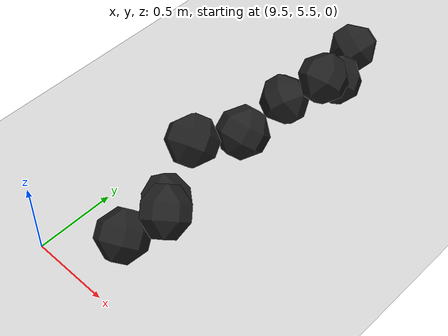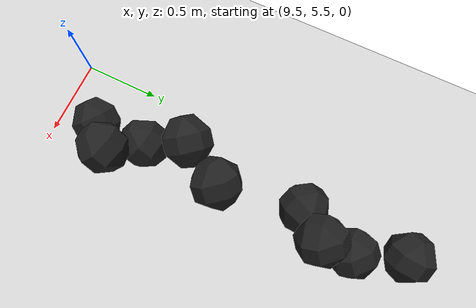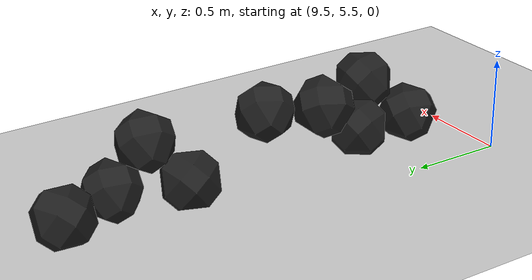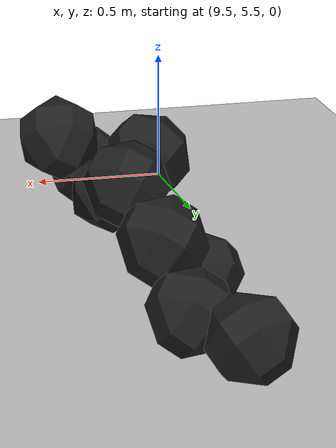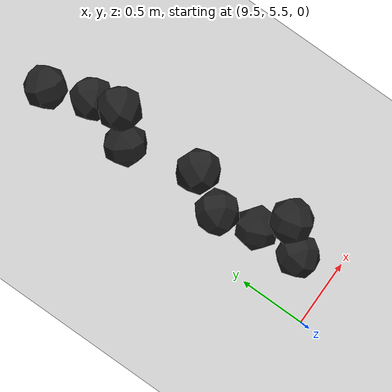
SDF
<sdf version="1.7">
 <world name="default">
  <model name="ground_plane">
   <static>1</static>
   <link name="link">
    <collision name="collision">
     <geometry><plane><normal>0 0 1</normal><size>100 100</size></plane></geometry>
     <surface><friction><ode><mu>100</mu><mu2>50</mu2></ode></friction></surface>
    </collision>
    <visual name="visual">
     <cast_shadows>0</cast_shadows>
     <geometry><plane><normal>0 0 1</normal><size>100 100</size></plane></geometry>
     <material>
      <script><uri>file://media/materials/scripts/gazebo.material</uri><name>Gazebo/Grey</name></script>
     </material>
    </visual>
   </link>
  </model>
  <model name="haoduomiantiaa_39">
   <link name="link_0">
    <inertial>
     <mass>0.2</mass>
     <inertia>
      <ixx>0.166667</ixx>
      <ixy>0</ixy>
      <ixz>0</ixz>
      <iyy>0.166667</iyy>
      <iyz>0</iyz>
      <izz>0.166667</izz>
     </inertia>
    </inertial>
    <visual name="visual">
     <geometry>
      <mesh>
       <uri>/home/lihaoyang/catkin_ws/src/pudong_gazebo/world/stl/haoduomianti.stl</uri>
       <scale>1 1 1</scale>
      </mesh>
     </geometry>
     <material>
      <lighting>1</lighting>
      <script><uri>file://media/materials/scripts/gazebo.material</uri><name>Gazebo/Black</name></script>
      <shader type="pixel"><normal_map>__default__</normal_map></shader>
      <ambient>0.3 0.3 0.3 1</ambient>
      <diffuse>0.7 0.7 0.7 1</diffuse>
      <specular>0.01 0.01 0.01 1</specular>
      <emissive>0 0 0 1</emissive>
     </material>
    </visual>
    <collision name="collision">
     <geometry>
      <mesh>
       <uri>/home/lihaoyang/catkin_ws/src/pudong_gazebo/world/stl/haoduomianti.stl</uri>
       <scale>1 1 1</scale>
      </mesh>
     </geometry>
     <surface>
      <friction>
       <ode><mu>1</mu><mu2>1</mu2><fdir1>0 0 0</fdir1><slip1>0</slip1><slip2>0</slip2></ode>
       <torsional>
        <coefficient>1</coefficient>
        <patch_radius>0</patch_radius>
        <surface_radius>0</surface_radius>
        <use_patch_radius>1</use_patch_radius>
        <ode><slip>0</slip></ode>
       </torsional>
      </friction>
      <bounce><restitution_coefficient>0</restitution_coefficient><threshold>1e+06</threshold></bounce>
      <contact>
       <collide_without_contact>0</collide_without_contact>
       <collide_without_contact_bitmask>1</collide_without_contact_bitmask>
       <collide_bitmask>1</collide_bitmask>
       <ode>
        <soft_cfm>0</soft_cfm>
        <soft_erp>0.2</soft_erp>
        <kp>1e+13</kp>
        <kd>1</kd>
        <max_vel>0.01</max_vel>
        <min_depth>0</min_depth>
       </ode>
       <bullet>
        <split_impulse>1</split_impulse>
        <split_impulse_penetration_threshold>-0.01</split_impulse_penetration_threshold>
        <soft_cfm>0</soft_cfm>
        <soft_erp>0.2</soft_erp>
        <kp>1e+13</kp>
        <kd>1</kd>
       </bullet>
      </contact>
     </surface>
    </collision>
   </link>
   <static>0</static>
   <pose>9.85935 6.14732 -0.1155 0.785504 -0.615534 0.392676</pose>
  </model>
  <model name="haoduomiantiaa_41">
   <link name="link_0">
    <inertial>
     <mass>0.2</mass>
     <inertia>
      <ixx>0.166667</ixx>
      <ixy>0</ixy>
      <ixz>0</ixz>
      <iyy>0.166667</iyy>
      <iyz>0</iyz>
      <izz>0.166667</izz>
     </inertia>
    </inertial>
    <visual name="visual">
     <geometry>
      <mesh>
       <uri>/home/lihaoyang/catkin_ws/src/pudong_gazebo/world/stl/haoduomianti.stl</uri>
       <scale>1 1 1</scale>
      </mesh>
     </geometry>
     <material>
      <lighting>1</lighting>
      <script><uri>file://media/materials/scripts/gazebo.material</uri><name>Gazebo/Black</name></script>
      <shader type="pixel"><normal_map>__default__</normal_map></shader>
      <ambient>0.3 0.3 0.3 1</ambient>
      <diffuse>0.7 0.7 0.7 1</diffuse>
      <specular>0.01 0.01 0.01 1</specular>
      <emissive>0 0 0 1</emissive>
     </material>
    </visual>
    <collision name="collision">
     <geometry>
      <mesh>
       <uri>/home/lihaoyang/catkin_ws/src/pudong_gazebo/world/stl/haoduomianti.stl</uri>
       <scale>1 1 1</scale>
      </mesh>
     </geometry>
     <surface>
      <friction>
       <ode><mu>1</mu><mu2>1</mu2><fdir1>0 0 0</fdir1><slip1>0</slip1><slip2>0</slip2></ode>
       <torsional>
        <coefficient>1</coefficient>
        <patch_radius>0</patch_radius>
        <surface_radius>0</surface_radius>
        <use_patch_radius>1</use_patch_radius>
        <ode><slip>0</slip></ode>
       </torsional>
      </friction>
      <bounce><restitution_coefficient>0</restitution_coefficient><threshold>1e+06</threshold></bounce>
      <contact>
       <collide_without_contact>0</collide_without_contact>
       <collide_without_contact_bitmask>1</collide_without_contact_bitmask>
       <collide_bitmask>1</collide_bitmask>
       <ode>
        <soft_cfm>0</soft_cfm>
        <soft_erp>0.2</soft_erp>
        <kp>1e+13</kp>
        <kd>1</kd>
        <max_vel>0.01</max_vel>
        <min_depth>0</min_depth>
       </ode>
       <bullet>
        <split_impulse>1</split_impulse>
        <split_impulse_penetration_threshold>-0.01</split_impulse_penetration_threshold>
        <soft_cfm>0</soft_cfm>
        <soft_erp>0.2</soft_erp>
        <kp>1e+13</kp>
        <kd>1</kd>
       </bullet>
      </contact>
     </surface>
    </collision>
   </link>
   <static>0</static>
   <pose>9.93235 7.60521 -0.115467 0.785385 -0.612735 1.90548</pose>
  </model>
  <model name="haoduomiantiaa_45">
   <link name="link_0">
    <inertial>
     <mass>0.2</mass>
     <inertia>
      <ixx>0.166667</ixx>
      <ixy>0</ixy>
      <ixz>0</ixz>
      <iyy>0.166667</iyy>
      <iyz>0</iyz>
      <izz>0.166667</izz>
     </inertia>
    </inertial>
    <visual name="visual">
     <geometry>
      <mesh>
       <uri>/home/lihaoyang/catkin_ws/src/pudong_gazebo/world/stl/haoduomianti.stl</uri>
       <scale>1 1 1</scale>
      </mesh>
     </geometry>
     <material>
      <lighting>1</lighting>
      <script><uri>file://media/materials/scripts/gazebo.material</uri><name>Gazebo/Black</name></script>
      <shader type="pixel"><normal_map>__default__</normal_map></shader>
      <ambient>0.3 0.3 0.3 1</ambient>
      <diffuse>0.7 0.7 0.7 1</diffuse>
      <specular>0.01 0.01 0.01 1</specular>
      <emissive>0 0 0 1</emissive>
     </material>
    </visual>
    <collision name="collision">
     <geometry>
      <mesh>
       <uri>/home/lihaoyang/catkin_ws/src/pudong_gazebo/world/stl/haoduomianti.stl</uri>
       <scale>1 1 1</scale>
      </mesh>
     </geometry>
     <surface>
      <friction>
       <ode><mu>1</mu><mu2>1</mu2><fdir1>0 0 0</fdir1><slip1>0</slip1><slip2>0</slip2></ode>
       <torsional>
        <coefficient>1</coefficient>
        <patch_radius>0</patch_radius>
        <surface_radius>0</surface_radius>
        <use_patch_radius>1</use_patch_radius>
        <ode><slip>0</slip></ode>
       </torsional>
      </friction>
      <bounce><restitution_coefficient>0</restitution_coefficient><threshold>1e+06</threshold></bounce>
      <contact>
       <collide_without_contact>0</collide_without_contact>
       <collide_without_contact_bitmask>1</collide_without_contact_bitmask>
       <collide_bitmask>1</collide_bitmask>
       <ode>
        <soft_cfm>0</soft_cfm>
        <soft_erp>0.2</soft_erp>
        <kp>1e+13</kp>
        <kd>1</kd>
        <max_vel>0.01</max_vel>
        <min_depth>0</min_depth>
       </ode>
       <bullet>
        <split_impulse>1</split_impulse>
        <split_impulse_penetration_threshold>-0.01</split_impulse_penetration_threshold>
        <soft_cfm>0</soft_cfm>
        <soft_erp>0.2</soft_erp>
        <kp>1e+13</kp>
        <kd>1</kd>
       </bullet>
      </contact>
     </surface>
    </collision>
   </link>
   <static>0</static>
   <pose>9.88069 5.82253 -0.111563 0.691479 -0.656367 2.02827</pose>
  </model>
  <model name="haoduomiantiaa_53">
   <link name="link_0">
    <inertial>
     <mass>0.2</mass>
     <inertia>
      <ixx>0.166667</ixx>
      <ixy>0</ixy>
      <ixz>0</ixz>
      <iyy>0.166667</iyy>
      <iyz>0</iyz>
      <izz>0.166667</izz>
     </inertia>
    </inertial>
    <visual name="visual">
     <geometry>
      <mesh>
       <uri>/home/lihaoyang/catkin_ws/src/pudong_gazebo/world/stl/haoduomianti.stl</uri>
       <scale>1 1 1</scale>
      </mesh>
     </geometry>
     <material>
      <lighting>1</lighting>
      <script><uri>file://media/materials/scripts/gazebo.material</uri><name>Gazebo/Black</name></script>
      <shader type="pixel"><normal_map>__default__</normal_map></shader>
      <ambient>0.3 0.3 0.3 1</ambient>
      <diffuse>0.7 0.7 0.7 1</diffuse>
      <specular>0.01 0.01 0.01 1</specular>
      <emissive>0 0 0 1</emissive>
     </material>
    </visual>
    <collision name="collision">
     <geometry>
      <mesh>
       <uri>/home/lihaoyang/catkin_ws/src/pudong_gazebo/world/stl/haoduomianti.stl</uri>
       <scale>1 1 1</scale>
      </mesh>
     </geometry>
     <surface>
      <friction>
       <ode><mu>1</mu><mu2>1</mu2><fdir1>0 0 0</fdir1><slip1>0</slip1><slip2>0</slip2></ode>
       <torsional>
        <coefficient>1</coefficient>
        <patch_radius>0</patch_radius>
        <surface_radius>0</surface_radius>
        <use_patch_radius>1</use_patch_radius>
        <ode><slip>0</slip></ode>
       </torsional>
      </friction>
      <bounce><restitution_coefficient>0</restitution_coefficient><threshold>1e+06</threshold></bounce>
      <contact>
       <collide_without_contact>0</collide_without_contact>
       <collide_without_contact_bitmask>1</collide_without_contact_bitmask>
       <collide_bitmask>1</collide_bitmask>
       <ode>
        <soft_cfm>0</soft_cfm>
        <soft_erp>0.2</soft_erp>
        <kp>1e+13</kp>
        <kd>1</kd>
        <max_vel>0.01</max_vel>
        <min_depth>0</min_depth>
       </ode>
       <bullet>
        <split_impulse>1</split_impulse>
        <split_impulse_penetration_threshold>-0.01</split_impulse_penetration_threshold>
        <soft_cfm>0</soft_cfm>
        <soft_erp>0.2</soft_erp>
        <kp>1e+13</kp>
        <kd>1</kd>
       </bullet>
      </contact>
     </surface>
    </collision>
   </link>
   <static>0</static>
   <pose>9.83567 7.22072 -0.110091 0.652059 -0.671616 0.778227</pose>
  </model>
  <model name="haoduomiantiaa_57">
   <link name="link_0">
    <inertial>
     <mass>0.2</mass>
     <inertia>
      <ixx>0.166667</ixx>
      <ixy>0</ixy>
      <ixz>0</ixz>
      <iyy>0.166667</iyy>
      <iyz>0</iyz>
      <izz>0.166667</izz>
     </inertia>
    </inertial>
    <visual name="visual">
     <geometry>
      <mesh>
       <uri>/home/lihaoyang/catkin_ws/src/pudong_gazebo/world/stl/haoduomianti.stl</uri>
       <scale>1 1 1</scale>
      </mesh>
     </geometry>
     <material>
      <lighting>1</lighting>
      <script><uri>file://media/materials/scripts/gazebo.material</uri><name>Gazebo/Black</name></script>
      <shader type="pixel"><normal_map>__default__</normal_map></shader>
      <ambient>0.3 0.3 0.3 1</ambient>
      <diffuse>0.7 0.7 0.7 1</diffuse>
      <specular>0.01 0.01 0.01 1</specular>
      <emissive>0 0 0 1</emissive>
     </material>
    </visual>
    <collision name="collision">
     <geometry>
      <mesh>
       <uri>/home/lihaoyang/catkin_ws/src/pudong_gazebo/world/stl/haoduomianti.stl</uri>
       <scale>1 1 1</scale>
      </mesh>
     </geometry>
     <surface>
      <friction>
       <ode><mu>1</mu><mu2>1</mu2><fdir1>0 0 0</fdir1><slip1>0</slip1><slip2>0</slip2></ode>
       <torsional>
        <coefficient>1</coefficient>
        <patch_radius>0</patch_radius>
        <surface_radius>0</surface_radius>
        <use_patch_radius>1</use_patch_radius>
        <ode><slip>0</slip></ode>
       </torsional>
      </friction>
      <bounce><restitution_coefficient>0</restitution_coefficient><threshold>1e+06</threshold></bounce>
      <contact>
       <collide_without_contact>0</collide_without_contact>
       <collide_without_contact_bitmask>1</collide_without_contact_bitmask>
       <collide_bitmask>1</collide_bitmask>
       <ode>
        <soft_cfm>0</soft_cfm>
        <soft_erp>0.2</soft_erp>
        <kp>1e+13</kp>
        <kd>1</kd>
        <max_vel>0.01</max_vel>
        <min_depth>0</min_depth>
       </ode>
       <bullet>
        <split_impulse>1</split_impulse>
        <split_impulse_penetration_threshold>-0.01</split_impulse_penetration_threshold>
        <soft_cfm>0</soft_cfm>
        <soft_erp>0.2</soft_erp>
        <kp>1e+13</kp>
        <kd>1</kd>
       </bullet>
      </contact>
     </surface>
    </collision>
   </link>
   <static>0</static>
   <pose>9.83217 6.44617 0.110252 0.90222 -0.457372 -2.46668</pose>
  </model>
  <model name="haoduomiantiaa_65">
   <link name="link_0">
    <inertial>
     <mass>0.2</mass>
     <inertia>
      <ixx>0.166667</ixx>
      <ixy>0</ixy>
      <ixz>0</ixz>
      <iyy>0.166667</iyy>
      <iyz>0</iyz>
      <izz>0.166667</izz>
     </inertia>
    </inertial>
    <visual name="visual">
     <geometry>
      <mesh>
       <uri>/home/lihaoyang/catkin_ws/src/pudong_gazebo/world/stl/haoduomianti.stl</uri>
       <scale>1 1 1</scale>
      </mesh>
     </geometry>
     <material>
      <lighting>1</lighting>
      <script><uri>file://media/materials/scripts/gazebo.material</uri><name>Gazebo/Black</name></script>
      <shader type="pixel"><normal_map>__default__</normal_map></shader>
      <ambient>0.3 0.3 0.3 1</ambient>
      <diffuse>0.7 0.7 0.7 1</diffuse>
      <specular>0.01 0.01 0.01 1</specular>
      <emissive>0 0 0 1</emissive>
     </material>
    </visual>
    <collision name="collision">
     <geometry>
      <mesh>
       <uri>/home/lihaoyang/catkin_ws/src/pudong_gazebo/world/stl/haoduomianti.stl</uri>
       <scale>1 1 1</scale>
      </mesh>
     </geometry>
     <surface>
      <friction>
       <ode><mu>1</mu><mu2>1</mu2><fdir1>0 0 0</fdir1><slip1>0</slip1><slip2>0</slip2></ode>
       <torsional>
        <coefficient>1</coefficient>
        <patch_radius>0</patch_radius>
        <surface_radius>0</surface_radius>
        <use_patch_radius>1</use_patch_radius>
        <ode><slip>0</slip></ode>
       </torsional>
      </friction>
      <bounce><restitution_coefficient>0</restitution_coefficient><threshold>1e+06</threshold></bounce>
      <contact>
       <collide_without_contact>0</collide_without_contact>
       <collide_without_contact_bitmask>1</collide_without_contact_bitmask>
       <collide_bitmask>1</collide_bitmask>
       <ode>
        <soft_cfm>0</soft_cfm>
        <soft_erp>0.2</soft_erp>
        <kp>1e+13</kp>
        <kd>1</kd>
        <max_vel>0.01</max_vel>
        <min_depth>0</min_depth>
       </ode>
       <bullet>
        <split_impulse>1</split_impulse>
        <split_impulse_penetration_threshold>-0.01</split_impulse_penetration_threshold>
        <soft_cfm>0</soft_cfm>
        <soft_erp>0.2</soft_erp>
        <kp>1e+13</kp>
        <kd>1</kd>
       </bullet>
      </contact>
     </surface>
    </collision>
   </link>
   <static>0</static>
   <pose>9.96431 7.36705 0.078413 0.682214 -0.585236 -0.226767</pose>
  </model>
  <model name="haoduomiantiaa_81">
   <link name="link_0">
    <inertial>
     <mass>0.2</mass>
     <inertia>
      <ixx>0.166667</ixx>
      <ixy>0</ixy>
      <ixz>0</ixz>
      <iyy>0.166667</iyy>
      <iyz>0</iyz>
      <izz>0.166667</izz>
     </inertia>
    </inertial>
    <visual name="visual">
     <geometry>
      <mesh>
       <uri>/home/lihaoyang/catkin_ws/src/pudong_gazebo/world/stl/haoduomianti.stl</uri>
       <scale>1 1 1</scale>
      </mesh>
     </geometry>
     <material>
      <lighting>1</lighting>
      <script><uri>file://media/materials/scripts/gazebo.material</uri><name>Gazebo/Black</name></script>
      <shader type="pixel"><normal_map>__default__</normal_map></shader>
      <ambient>0.3 0.3 0.3 1</ambient>
      <diffuse>0.7 0.7 0.7 1</diffuse>
      <specular>0.01 0.01 0.01 1</specular>
      <emissive>0 0 0 1</emissive>
     </material>
    </visual>
    <collision name="collision">
     <geometry>
      <mesh>
       <uri>/home/lihaoyang/catkin_ws/src/pudong_gazebo/world/stl/haoduomianti.stl</uri>
       <scale>1 1 1</scale>
      </mesh>
     </geometry>
     <surface>
      <friction>
       <ode><mu>1</mu><mu2>1</mu2><fdir1>0 0 0</fdir1><slip1>0</slip1><slip2>0</slip2></ode>
       <torsional>
        <coefficient>1</coefficient>
        <patch_radius>0</patch_radius>
        <surface_radius>0</surface_radius>
        <use_patch_radius>1</use_patch_radius>
        <ode><slip>0</slip></ode>
       </torsional>
      </friction>
      <bounce><restitution_coefficient>0</restitution_coefficient><threshold>1e+06</threshold></bounce>
      <contact>
       <collide_without_contact>0</collide_without_contact>
       <collide_without_contact_bitmask>1</collide_without_contact_bitmask>
       <collide_bitmask>1</collide_bitmask>
       <ode>
        <soft_cfm>0</soft_cfm>
        <soft_erp>0.2</soft_erp>
        <kp>1e+13</kp>
        <kd>1</kd>
        <max_vel>0.01</max_vel>
        <min_depth>0</min_depth>
       </ode>
       <bullet>
        <split_impulse>1</split_impulse>
        <split_impulse_penetration_threshold>-0.01</split_impulse_penetration_threshold>
        <soft_cfm>0</soft_cfm>
        <soft_erp>0.2</soft_erp>
        <kp>1e+13</kp>
        <kd>1</kd>
       </bullet>
      </contact>
     </surface>
    </collision>
   </link>
   <static>0</static>
   <pose>9.90482 6.73152 0.086347 0.843926 -0.466607 -0.412026</pose>
  </model>
  <model name="haoduomiantiaa_104">
   <link name="link_0">
    <inertial>
     <mass>0.2</mass>
     <inertia>
      <ixx>0.166667</ixx>
      <ixy>0</ixy>
      <ixz>0</ixz>
      <iyy>0.166667</iyy>
      <iyz>0</iyz>
      <izz>0.166667</izz>
     </inertia>
    </inertial>
    <visual name="visual">
     <geometry>
      <mesh>
       <uri>/home/lihaoyang/catkin_ws/src/pudong_gazebo/world/stl/haoduomianti.stl</uri>
       <scale>1 1 1</scale>
      </mesh>
     </geometry>
     <material>
      <lighting>1</lighting>
      <script><uri>file://media/materials/scripts/gazebo.material</uri><name>Gazebo/Black</name></script>
      <shader type="pixel"><normal_map>__default__</normal_map></shader>
      <ambient>0.3 0.3 0.3 1</ambient>
      <diffuse>0.7 0.7 0.7 1</diffuse>
      <specular>0.01 0.01 0.01 1</specular>
      <emissive>0 0 0 1</emissive>
     </material>
    </visual>
    <collision name="collision">
     <geometry>
      <mesh>
       <uri>/home/lihaoyang/catkin_ws/src/pudong_gazebo/world/stl/haoduomianti.stl</uri>
       <scale>1 1 1</scale>
      </mesh>
     </geometry>
     <surface>
      <friction>
       <ode><mu>1</mu><mu2>1</mu2><fdir1>0 0 0</fdir1><slip1>0</slip1><slip2>0</slip2></ode>
       <torsional>
        <coefficient>1</coefficient>
        <patch_radius>0</patch_radius>
        <surface_radius>0</surface_radius>
        <use_patch_radius>1</use_patch_radius>
        <ode><slip>0</slip></ode>
       </torsional>
      </friction>
      <bounce><restitution_coefficient>0</restitution_coefficient><threshold>1e+06</threshold></bounce>
      <contact>
       <collide_without_contact>0</collide_without_contact>
       <collide_without_contact_bitmask>1</collide_without_contact_bitmask>
       <collide_bitmask>1</collide_bitmask>
       <ode>
        <soft_cfm>0</soft_cfm>
        <soft_erp>0.2</soft_erp>
        <kp>1e+13</kp>
        <kd>1</kd>
        <max_vel>0.01</max_vel>
        <min_depth>0</min_depth>
       </ode>
       <bullet>
        <split_impulse>1</split_impulse>
        <split_impulse_penetration_threshold>-0.01</split_impulse_penetration_threshold>
        <soft_cfm>0</soft_cfm>
        <soft_erp>0.2</soft_erp>
        <kp>1e+13</kp>
        <kd>1</kd>
       </bullet>
      </contact>
     </surface>
    </collision>
   </link>
   <static>0</static>
   <pose>9.99797 5.98069 0.070513 0.929946 -0.655435 2.25176</pose>
  </model>
  <model name="haoduomiantiaa_120">
   <link name="link_0">
    <inertial>
     <mass>0.2</mass>
     <inertia>
      <ixx>0.166667</ixx>
      <ixy>0</ixy>
      <ixz>0</ixz>
      <iyy>0.166667</iyy>
      <iyz>0</iyz>
      <izz>0.166667</izz>
     </inertia>
    </inertial>
    <visual name="visual">
     <geometry>
      <mesh>
       <uri>/home/lihaoyang/catkin_ws/src/pudong_gazebo/world/stl/haoduomianti.stl</uri>
       <scale>1 1 1</scale>
      </mesh>
     </geometry>
     <material>
      <lighting>1</lighting>
      <script><uri>file://media/materials/scripts/gazebo.material</uri><name>Gazebo/Black</name></script>
      <shader type="pixel"><normal_map>__default__</normal_map></shader>
      <ambient>0.3 0.3 0.3 1</ambient>
      <diffuse>0.7 0.7 0.7 1</diffuse>
      <specular>0.01 0.01 0.01 1</specular>
      <emissive>0 0 0 1</emissive>
     </material>
    </visual>
    <collision name="collision">
     <geometry>
      <mesh>
       <uri>/home/lihaoyang/catkin_ws/src/pudong_gazebo/world/stl/haoduomianti.stl</uri>
       <scale>1 1 1</scale>
      </mesh>
     </geometry>
     <surface>
      <friction>
       <ode><mu>1</mu><mu2>1</mu2><fdir1>0 0 0</fdir1><slip1>0</slip1><slip2>0</slip2></ode>
       <torsional>
        <coefficient>1</coefficient>
        <patch_radius>0</patch_radius>
        <surface_radius>0</surface_radius>
        <use_patch_radius>1</use_patch_radius>
        <ode><slip>0</slip></ode>
       </torsional>
      </friction>
      <bounce><restitution_coefficient>0</restitution_coefficient><threshold>1e+06</threshold></bounce>
      <contact>
       <collide_without_contact>0</collide_without_contact>
       <collide_without_contact_bitmask>1</collide_without_contact_bitmask>
       <collide_bitmask>1</collide_bitmask>
       <ode>
        <soft_cfm>0</soft_cfm>
        <soft_erp>0.2</soft_erp>
        <kp>1e+13</kp>
        <kd>1</kd>
        <max_vel>0.01</max_vel>
        <min_depth>0</min_depth>
       </ode>
       <bullet>
        <split_impulse>1</split_impulse>
        <split_impulse_penetration_threshold>-0.01</split_impulse_penetration_threshold>
        <soft_cfm>0</soft_cfm>
        <soft_erp>0.2</soft_erp>
        <kp>1e+13</kp>
        <kd>1</kd>
       </bullet>
      </contact>
     </surface>
    </collision>
   </link>
   <static>0</static>
   <pose>9.80983 7.92041 -0.11549 0.785399 -0.61548 0.968309</pose>
  </model>
 </world>
</sdf>
